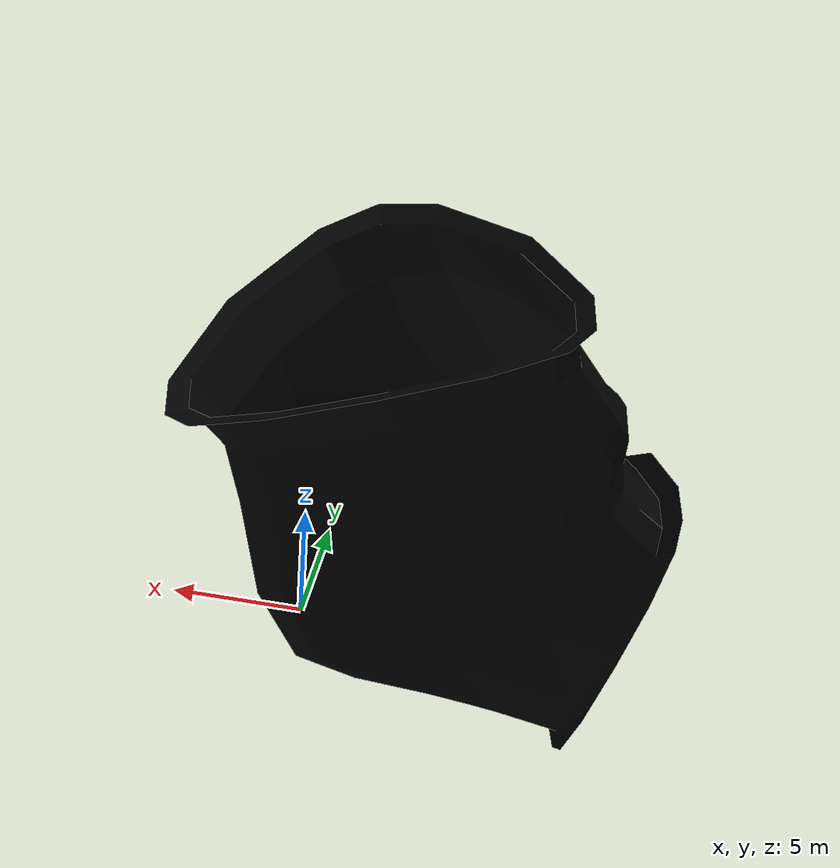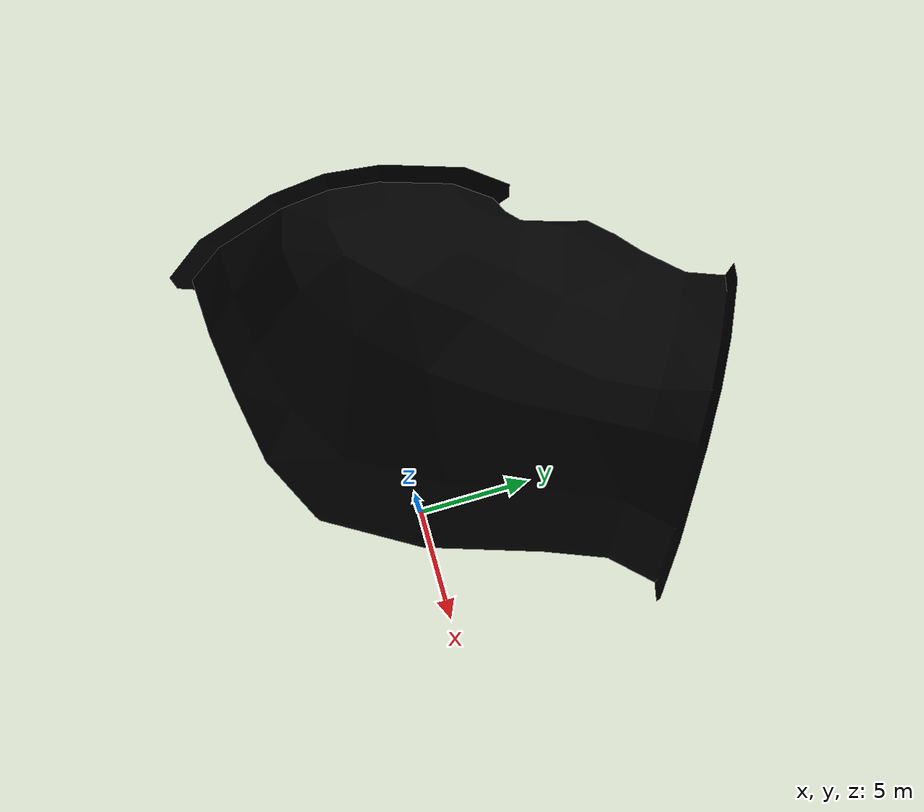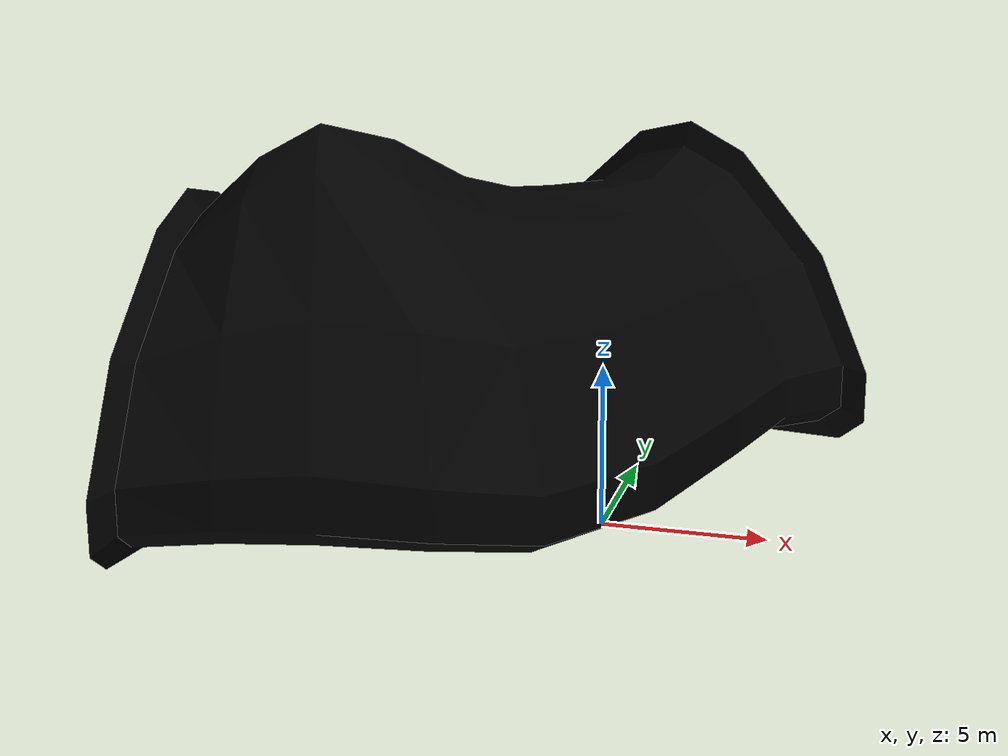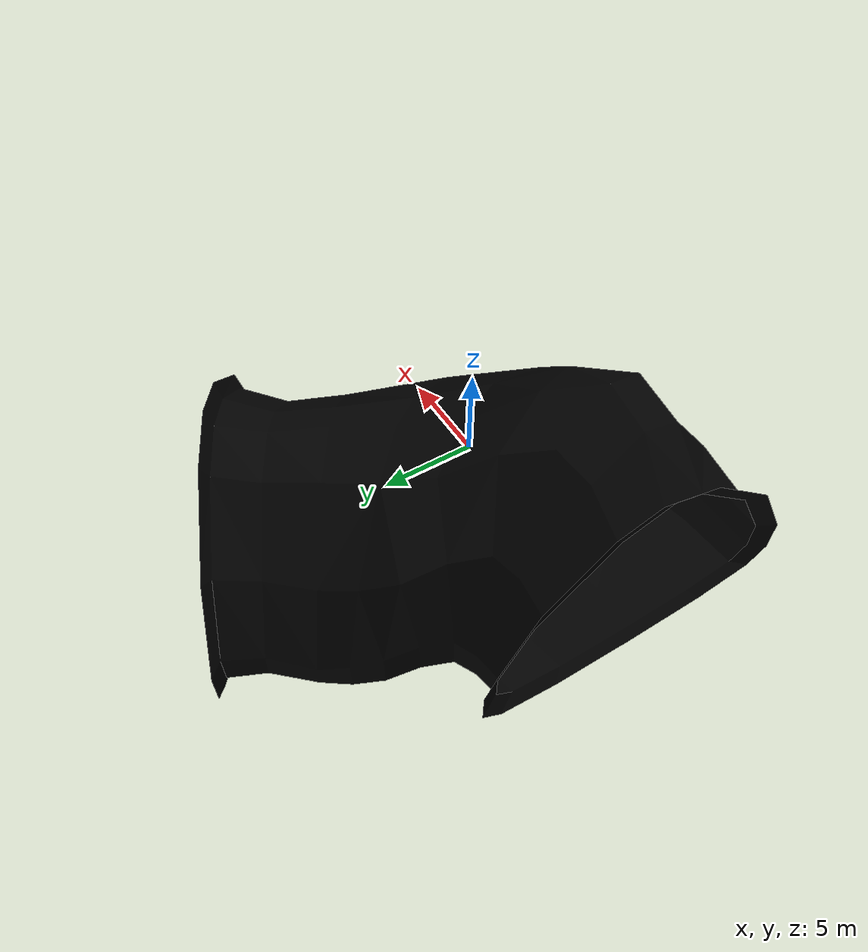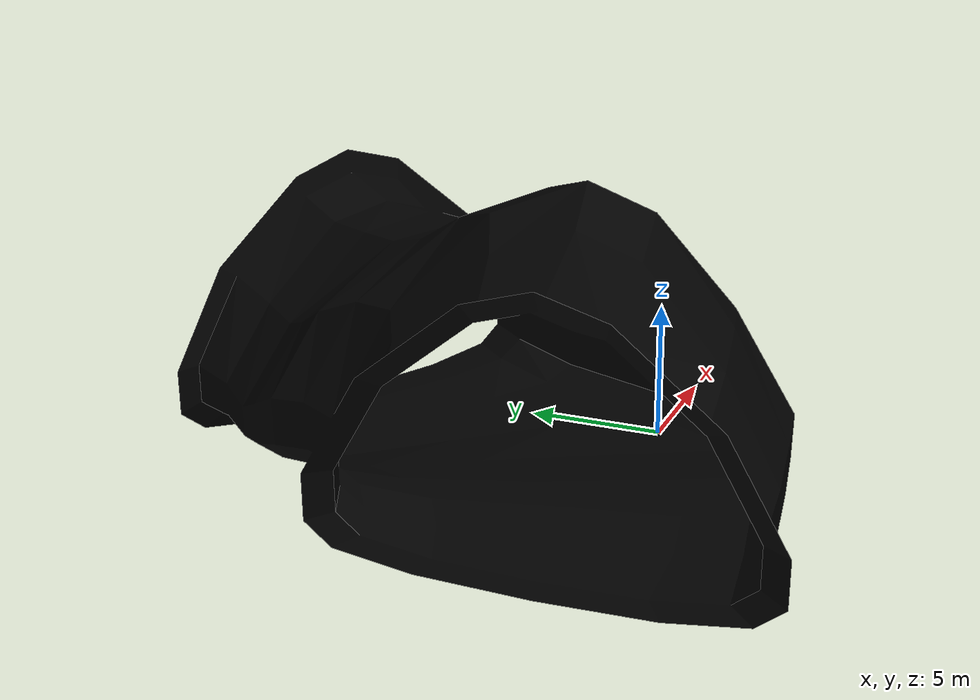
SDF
<sdf version="1.6">
  <model name="Cave Corner 30F Type B">
    <static>true</static>
    <link name="base_link">
    <collision name="collision">
      <pose>0 0 0 0 0 0</pose>
      <geometry>
        <mesh>
          <uri>model://Cave Corner 30F Type B/meshes/corner30degflipped.dae</uri>
          <scale>1.0 1.0 1.0</scale>
        </mesh>
      </geometry>
    </collision>
    <visual name="CaveWall_visual">
      <geometry>
        <mesh>
          <uri>model://Cave Corner 30F Type B/meshes/corner30degflipped.dae</uri>
          <scale>1.0 1.0 1.0</scale>
        </mesh>
      </geometry>
      <material>
        <diffuse>0 0 0 1</diffuse>
        <specular>0 0 0 1</specular>
        <pbr>
          <metal>
            <albedo_map>model://Cave Corner 30F Type B/materials/textures/CaveWall_Albedo.png</albedo_map>
            <normal_map>model://Cave Corner 30F Type B/materials/textures/CaveWall_Normal.png</normal_map>
            <roughness_map>model://Cave Corner 30F Type B/materials/textures/CaveWall_Roughness.png</roughness_map>
          </metal>
        </pbr>

        <script>
          <uri>model://Cave Corner 30F Type B/materials/scripts/</uri>
          <uri>model://Cave Corner 30F Type B/materials/textures/</uri>
          <name>CaveTile/CaveWall_Diffuse</name>
        </script>
      </material>
    </visual>
    </link>
  </model>
</sdf>
